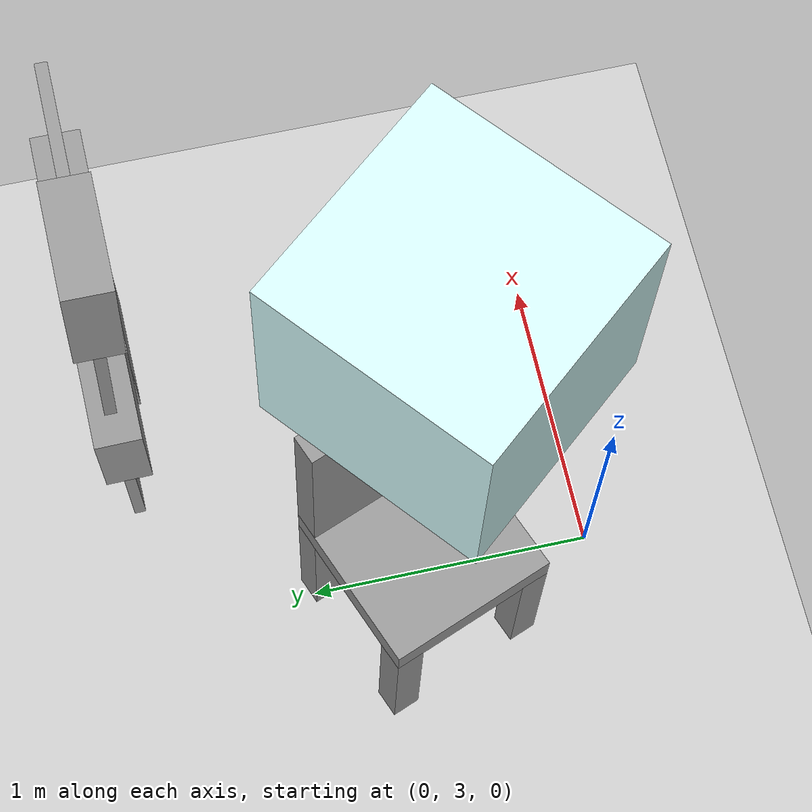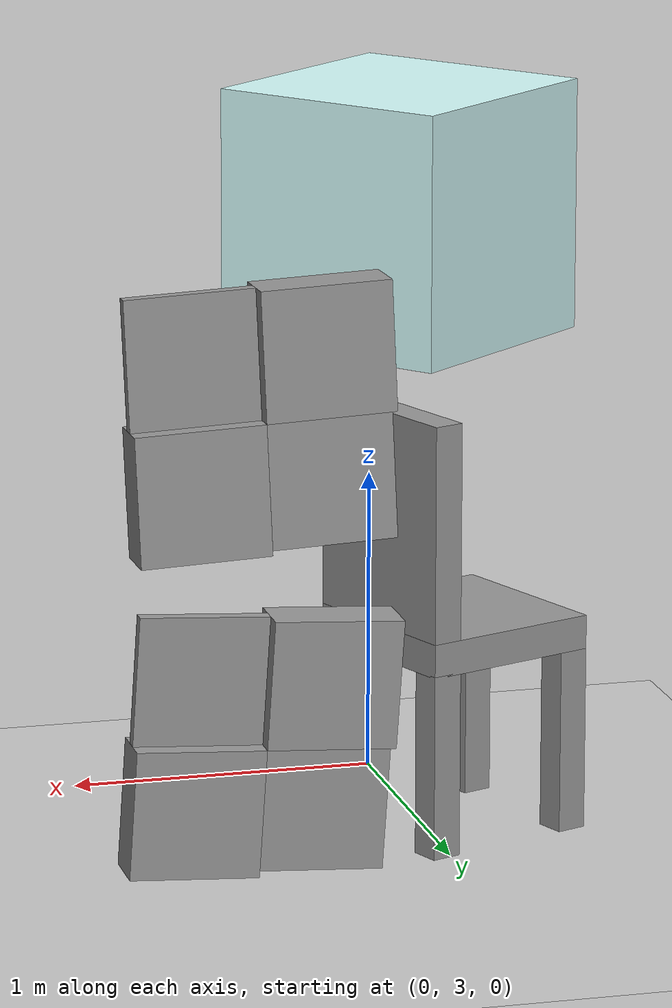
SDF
<sdf version="1.7">
 <world name="default">
  <model name="dyn_box_1">
   <pose>0.054794 3.56493 2 0 -0 0.693286</pose>
   <static>1</static>
   <allow_auto_disable>0</allow_auto_disable>
   <link name="link">
    <collision name="collision">
     <geometry><box><size>0.8 0.8 0.8</size></box></geometry>
     <max_contacts>20</max_contacts>
    </collision>
    <visual name="visual">
     <geometry><box><size>0.8 0.8 0.8</size></box></geometry>
     <material><ambient>0.839216 1 0.996078 1</ambient><diffuse>0.839216 1 0.996078 1</diffuse></material>
    </visual>
   </link>
  </model>
  <model name="ground_plane">
   <static>1</static>
   <link name="link">
    <collision name="collision">
     <geometry><plane><normal>0 0 1</normal><size>100 100</size></plane></geometry>
     <surface>
      <contact><collide_bitmask>65535</collide_bitmask></contact>
      <friction><ode><mu>100</mu><mu2>50</mu2></ode></friction>
     </surface>
    </collision>
    <visual name="visual">
     <cast_shadows>0</cast_shadows>
     <geometry><plane><normal>0 0 1</normal><size>100 100</size></plane></geometry>
     <material>
      <script><uri>file://media/materials/scripts/gazebo.material</uri><name>Gazebo/Grey</name></script>
     </material>
    </visual>
   </link>
  </model>
  <model name="wall_slate_41">
   <static>1</static>
   <link name="link_0">
    <inertial><mass>1</mass></inertial>
    <gravity>0</gravity>
    <visual name="visual">
     <pose>0 0.2 0.2 0 -0 0</pose>
     <geometry><box><size>0.16 0.4 0.4</size></box></geometry>
     <material>
      <lighting>1</lighting>
      <script><uri>file://media/materials/scripts/gazebo.material</uri><name>Gazebo/Grey</name></script>
      <shader type="pixel"><normal_map>__default__</normal_map></shader>
      <ambient>0.3 0.3 0.3 1</ambient>
      <diffuse>0.7 0.7 0.7 1</diffuse>
      <specular>0.01 0.01 0.01 1</specular>
      <emissive>0 0 0 1</emissive>
     </material>
    </visual>
    <visual name="ModelPreview_0::link_0::visual_1">
     <pose>0 0.2 -0.2 0 -0 0</pose>
     <geometry><box><size>0.04 0.4 0.4</size></box></geometry>
     <material>
      <lighting>1</lighting>
      <script><uri>file://media/materials/scripts/gazebo.material</uri><name>Gazebo/Grey</name></script>
      <shader type="pixel"><normal_map>__default__</normal_map></shader>
      <ambient>0.3 0.3 0.3 1</ambient>
      <diffuse>0.7 0.7 0.7 1</diffuse>
      <specular>0.01 0.01 0.01 1</specular>
      <emissive>0 0 0 1</emissive>
     </material>
    </visual>
    <visual name="ModelPreview_0::link_0::visual_2">
     <pose>0 -0.2 0.2 0 -0 0</pose>
     <geometry><box><size>0.04 0.4 0.4</size></box></geometry>
     <material>
      <lighting>1</lighting>
      <script><uri>file://media/materials/scripts/gazebo.material</uri><name>Gazebo/Grey</name></script>
      <shader type="pixel"><normal_map>__default__</normal_map></shader>
      <ambient>0.3 0.3 0.3 1</ambient>
      <diffuse>0.7 0.7 0.7 1</diffuse>
      <specular>0.01 0.01 0.01 1</specular>
      <emissive>0 0 0 1</emissive>
     </material>
    </visual>
    <visual name="ModelPreview_0::link_0::visual_3">
     <pose>0 -0.2 -0.2 0 -0 0</pose>
     <geometry><box><size>0.16 0.4 0.4</size></box></geometry>
     <material>
      <lighting>1</lighting>
      <script><uri>file://media/materials/scripts/gazebo.material</uri><name>Gazebo/Grey</name></script>
      <shader type="pixel"><normal_map>__default__</normal_map></shader>
      <ambient>0.3 0.3 0.3 1</ambient>
      <diffuse>0.7 0.7 0.7 1</diffuse>
      <specular>0.01 0.01 0.01 1</specular>
      <emissive>0 0 0 1</emissive>
     </material>
    </visual>
    <collision name="collision_2">
     <pose>0 -0.2 0.2 0 -0 0</pose>
     <geometry><box><size>0.04 0.4 0.4</size></box></geometry>
     <surface>
      <friction>
       <ode><mu>1</mu><mu2>1</mu2><fdir1>0 0 0</fdir1><slip1>0</slip1><slip2>0</slip2></ode>
       <torsional>
        <coefficient>1</coefficient>
        <patch_radius>0</patch_radius>
        <surface_radius>0</surface_radius>
        <use_patch_radius>1</use_patch_radius>
        <ode><slip>0</slip></ode>
       </torsional>
      </friction>
      <bounce><restitution_coefficient>0</restitution_coefficient><threshold>1e+06</threshold></bounce>
      <contact>
       <collide_without_contact>0</collide_without_contact>
       <collide_without_contact_bitmask>1</collide_without_contact_bitmask>
       <collide_bitmask>1</collide_bitmask>
       <ode>
        <soft_cfm>0</soft_cfm>
        <soft_erp>0.2</soft_erp>
        <kp>1e+13</kp>
        <kd>1</kd>
        <max_vel>0.01</max_vel>
        <min_depth>0</min_depth>
       </ode>
       <bullet>
        <split_impulse>1</split_impulse>
        <split_impulse_penetration_threshold>-0.01</split_impulse_penetration_threshold>
        <soft_cfm>0</soft_cfm>
        <soft_erp>0.2</soft_erp>
        <kp>1e+13</kp>
        <kd>1</kd>
       </bullet>
      </contact>
     </surface>
    </collision>
    <collision name="collision_1">
     <pose>0 0.2 -0.2 0 -0 0</pose>
     <geometry><box><size>0.04 0.4 0.4</size></box></geometry>
     <surface>
      <friction>
       <ode><mu>1</mu><mu2>1</mu2><fdir1>0 0 0</fdir1><slip1>0</slip1><slip2>0</slip2></ode>
       <torsional>
        <coefficient>1</coefficient>
        <patch_radius>0</patch_radius>
        <surface_radius>0</surface_radius>
        <use_patch_radius>1</use_patch_radius>
        <ode><slip>0</slip></ode>
       </torsional>
      </friction>
      <bounce><restitution_coefficient>0</restitution_coefficient><threshold>1e+06</threshold></bounce>
      <contact>
       <collide_without_contact>0</collide_without_contact>
       <collide_without_contact_bitmask>1</collide_without_contact_bitmask>
       <collide_bitmask>1</collide_bitmask>
       <ode>
        <soft_cfm>0</soft_cfm>
        <soft_erp>0.2</soft_erp>
        <kp>1e+13</kp>
        <kd>1</kd>
        <max_vel>0.01</max_vel>
        <min_depth>0</min_depth>
       </ode>
       <bullet>
        <split_impulse>1</split_impulse>
        <split_impulse_penetration_threshold>-0.01</split_impulse_penetration_threshold>
        <soft_cfm>0</soft_cfm>
        <soft_erp>0.2</soft_erp>
        <kp>1e+13</kp>
        <kd>1</kd>
       </bullet>
      </contact>
     </surface>
    </collision>
    <collision name="collision_4">
     <pose>0 0.2 0.2 0 -0 0</pose>
     <geometry><box><size>0.16 0.4 0.4</size></box></geometry>
     <surface>
      <friction>
       <ode><mu>1</mu><mu2>1</mu2><fdir1>0 0 0</fdir1><slip1>0</slip1><slip2>0</slip2></ode>
       <torsional>
        <coefficient>1</coefficient>
        <patch_radius>0</patch_radius>
        <surface_radius>0</surface_radius>
        <use_patch_radius>1</use_patch_radius>
        <ode><slip>0</slip></ode>
       </torsional>
      </friction>
      <bounce><restitution_coefficient>0</restitution_coefficient><threshold>1e+06</threshold></bounce>
      <contact>
       <collide_without_contact>0</collide_without_contact>
       <collide_without_contact_bitmask>1</collide_without_contact_bitmask>
       <collide_bitmask>1</collide_bitmask>
       <ode>
        <soft_cfm>0</soft_cfm>
        <soft_erp>0.2</soft_erp>
        <kp>1e+13</kp>
        <kd>1</kd>
        <max_vel>0.01</max_vel>
        <min_depth>0</min_depth>
       </ode>
       <bullet>
        <split_impulse>1</split_impulse>
        <split_impulse_penetration_threshold>-0.01</split_impulse_penetration_threshold>
        <soft_cfm>0</soft_cfm>
        <soft_erp>0.2</soft_erp>
        <kp>1e+13</kp>
        <kd>1</kd>
       </bullet>
      </contact>
     </surface>
    </collision>
    <collision name="collision_3">
     <pose>0 -0.2 -0.2 0 -0 0</pose>
     <geometry><box><size>0.16 0.4 0.4</size></box></geometry>
     <surface>
      <friction>
       <ode><mu>1</mu><mu2>1</mu2><fdir1>0 0 0</fdir1><slip1>0</slip1><slip2>0</slip2></ode>
       <torsional>
        <coefficient>1</coefficient>
        <patch_radius>0</patch_radius>
        <surface_radius>0</surface_radius>
        <use_patch_radius>1</use_patch_radius>
        <ode><slip>0</slip></ode>
       </torsional>
      </friction>
      <bounce><restitution_coefficient>0</restitution_coefficient><threshold>1e+06</threshold></bounce>
      <contact>
       <collide_without_contact>0</collide_without_contact>
       <collide_without_contact_bitmask>1</collide_without_contact_bitmask>
       <collide_bitmask>1</collide_bitmask>
       <ode>
        <soft_cfm>0</soft_cfm>
        <soft_erp>0.2</soft_erp>
        <kp>1e+13</kp>
        <kd>1</kd>
        <max_vel>0.01</max_vel>
        <min_depth>0</min_depth>
       </ode>
       <bullet>
        <split_impulse>1</split_impulse>
        <split_impulse_penetration_threshold>-0.01</split_impulse_penetration_threshold>
        <soft_cfm>0</soft_cfm>
        <soft_erp>0.2</soft_erp>
        <kp>1e+13</kp>
        <kd>1</kd>
       </bullet>
      </contact>
     </surface>
    </collision>
   </link>
   <pose>0.753514 4.56618 0.6 -0.06 0.02 1.5757</pose>
  </model>
  <model name="wall_slate_52">
   <static>1</static>
   <link name="link_0">
    <inertial><mass>1</mass></inertial>
    <gravity>0</gravity>
    <visual name="visual">
     <pose>0 0.2 0.2 0 -0 0</pose>
     <geometry><box><size>0.16 0.4 0.4</size></box></geometry>
     <material>
      <lighting>1</lighting>
      <script><uri>file://media/materials/scripts/gazebo.material</uri><name>Gazebo/Grey</name></script>
      <shader type="pixel"><normal_map>__default__</normal_map></shader>
      <ambient>0.3 0.3 0.3 1</ambient>
      <diffuse>0.7 0.7 0.7 1</diffuse>
      <specular>0.01 0.01 0.01 1</specular>
      <emissive>0 0 0 1</emissive>
     </material>
    </visual>
    <visual name="ModelPreview_0::link_0::visual_1">
     <pose>0 0.2 -0.2 0 -0 0</pose>
     <geometry><box><size>0.04 0.4 0.4</size></box></geometry>
     <material>
      <lighting>1</lighting>
      <script><uri>file://media/materials/scripts/gazebo.material</uri><name>Gazebo/Grey</name></script>
      <shader type="pixel"><normal_map>__default__</normal_map></shader>
      <ambient>0.3 0.3 0.3 1</ambient>
      <diffuse>0.7 0.7 0.7 1</diffuse>
      <specular>0.01 0.01 0.01 1</specular>
      <emissive>0 0 0 1</emissive>
     </material>
    </visual>
    <visual name="ModelPreview_0::link_0::visual_2">
     <pose>0 -0.2 0.2 0 -0 0</pose>
     <geometry><box><size>0.04 0.4 0.4</size></box></geometry>
     <material>
      <lighting>1</lighting>
      <script><uri>file://media/materials/scripts/gazebo.material</uri><name>Gazebo/Grey</name></script>
      <shader type="pixel"><normal_map>__default__</normal_map></shader>
      <ambient>0.3 0.3 0.3 1</ambient>
      <diffuse>0.7 0.7 0.7 1</diffuse>
      <specular>0.01 0.01 0.01 1</specular>
      <emissive>0 0 0 1</emissive>
     </material>
    </visual>
    <visual name="ModelPreview_0::link_0::visual_3">
     <pose>0 -0.2 -0.2 0 -0 0</pose>
     <geometry><box><size>0.16 0.4 0.4</size></box></geometry>
     <material>
      <lighting>1</lighting>
      <script><uri>file://media/materials/scripts/gazebo.material</uri><name>Gazebo/Grey</name></script>
      <shader type="pixel"><normal_map>__default__</normal_map></shader>
      <ambient>0.3 0.3 0.3 1</ambient>
      <diffuse>0.7 0.7 0.7 1</diffuse>
      <specular>0.01 0.01 0.01 1</specular>
      <emissive>0 0 0 1</emissive>
     </material>
    </visual>
    <collision name="collision_2">
     <pose>0 -0.2 0.2 0 -0 0</pose>
     <geometry><box><size>0.04 0.4 0.4</size></box></geometry>
     <surface>
      <friction>
       <ode><mu>1</mu><mu2>1</mu2><fdir1>0 0 0</fdir1><slip1>0</slip1><slip2>0</slip2></ode>
       <torsional>
        <coefficient>1</coefficient>
        <patch_radius>0</patch_radius>
        <surface_radius>0</surface_radius>
        <use_patch_radius>1</use_patch_radius>
        <ode><slip>0</slip></ode>
       </torsional>
      </friction>
      <bounce><restitution_coefficient>0</restitution_coefficient><threshold>1e+06</threshold></bounce>
      <contact>
       <collide_without_contact>0</collide_without_contact>
       <collide_without_contact_bitmask>1</collide_without_contact_bitmask>
       <collide_bitmask>1</collide_bitmask>
       <ode>
        <soft_cfm>0</soft_cfm>
        <soft_erp>0.2</soft_erp>
        <kp>1e+13</kp>
        <kd>1</kd>
        <max_vel>0.01</max_vel>
        <min_depth>0</min_depth>
       </ode>
       <bullet>
        <split_impulse>1</split_impulse>
        <split_impulse_penetration_threshold>-0.01</split_impulse_penetration_threshold>
        <soft_cfm>0</soft_cfm>
        <soft_erp>0.2</soft_erp>
        <kp>1e+13</kp>
        <kd>1</kd>
       </bullet>
      </contact>
     </surface>
    </collision>
    <collision name="collision_1">
     <pose>0 0.2 -0.2 0 -0 0</pose>
     <geometry><box><size>0.04 0.4 0.4</size></box></geometry>
     <surface>
      <friction>
       <ode><mu>1</mu><mu2>1</mu2><fdir1>0 0 0</fdir1><slip1>0</slip1><slip2>0</slip2></ode>
       <torsional>
        <coefficient>1</coefficient>
        <patch_radius>0</patch_radius>
        <surface_radius>0</surface_radius>
        <use_patch_radius>1</use_patch_radius>
        <ode><slip>0</slip></ode>
       </torsional>
      </friction>
      <bounce><restitution_coefficient>0</restitution_coefficient><threshold>1e+06</threshold></bounce>
      <contact>
       <collide_without_contact>0</collide_without_contact>
       <collide_without_contact_bitmask>1</collide_without_contact_bitmask>
       <collide_bitmask>1</collide_bitmask>
       <ode>
        <soft_cfm>0</soft_cfm>
        <soft_erp>0.2</soft_erp>
        <kp>1e+13</kp>
        <kd>1</kd>
        <max_vel>0.01</max_vel>
        <min_depth>0</min_depth>
       </ode>
       <bullet>
        <split_impulse>1</split_impulse>
        <split_impulse_penetration_threshold>-0.01</split_impulse_penetration_threshold>
        <soft_cfm>0</soft_cfm>
        <soft_erp>0.2</soft_erp>
        <kp>1e+13</kp>
        <kd>1</kd>
       </bullet>
      </contact>
     </surface>
    </collision>
    <collision name="collision_4">
     <pose>0 0.2 0.2 0 -0 0</pose>
     <geometry><box><size>0.16 0.4 0.4</size></box></geometry>
     <surface>
      <friction>
       <ode><mu>1</mu><mu2>1</mu2><fdir1>0 0 0</fdir1><slip1>0</slip1><slip2>0</slip2></ode>
       <torsional>
        <coefficient>1</coefficient>
        <patch_radius>0</patch_radius>
        <surface_radius>0</surface_radius>
        <use_patch_radius>1</use_patch_radius>
        <ode><slip>0</slip></ode>
       </torsional>
      </friction>
      <bounce><restitution_coefficient>0</restitution_coefficient><threshold>1e+06</threshold></bounce>
      <contact>
       <collide_without_contact>0</collide_without_contact>
       <collide_without_contact_bitmask>1</collide_without_contact_bitmask>
       <collide_bitmask>1</collide_bitmask>
       <ode>
        <soft_cfm>0</soft_cfm>
        <soft_erp>0.2</soft_erp>
        <kp>1e+13</kp>
        <kd>1</kd>
        <max_vel>0.01</max_vel>
        <min_depth>0</min_depth>
       </ode>
       <bullet>
        <split_impulse>1</split_impulse>
        <split_impulse_penetration_threshold>-0.01</split_impulse_penetration_threshold>
        <soft_cfm>0</soft_cfm>
        <soft_erp>0.2</soft_erp>
        <kp>1e+13</kp>
        <kd>1</kd>
       </bullet>
      </contact>
     </surface>
    </collision>
    <collision name="collision_3">
     <pose>0 -0.2 -0.2 0 -0 0</pose>
     <geometry><box><size>0.16 0.4 0.4</size></box></geometry>
     <surface>
      <friction>
       <ode><mu>1</mu><mu2>1</mu2><fdir1>0 0 0</fdir1><slip1>0</slip1><slip2>0</slip2></ode>
       <torsional>
        <coefficient>1</coefficient>
        <patch_radius>0</patch_radius>
        <surface_radius>0</surface_radius>
        <use_patch_radius>1</use_patch_radius>
        <ode><slip>0</slip></ode>
       </torsional>
      </friction>
      <bounce><restitution_coefficient>0</restitution_coefficient><threshold>1e+06</threshold></bounce>
      <contact>
       <collide_without_contact>0</collide_without_contact>
       <collide_without_contact_bitmask>1</collide_without_contact_bitmask>
       <collide_bitmask>1</collide_bitmask>
       <ode>
        <soft_cfm>0</soft_cfm>
        <soft_erp>0.2</soft_erp>
        <kp>1e+13</kp>
        <kd>1</kd>
        <max_vel>0.01</max_vel>
        <min_depth>0</min_depth>
       </ode>
       <bullet>
        <split_impulse>1</split_impulse>
        <split_impulse_penetration_threshold>-0.01</split_impulse_penetration_threshold>
        <soft_cfm>0</soft_cfm>
        <soft_erp>0.2</soft_erp>
        <kp>1e+13</kp>
        <kd>1</kd>
       </bullet>
      </contact>
     </surface>
    </collision>
   </link>
   <pose>0.753514 4.56618 1.6 0.04 -0.02 1.5757</pose>
  </model>
  <model name="chair_0">
   <link name="link_0_clone">
    <inertial>
     <mass>1</mass>
     <inertia><ixx>1</ixx><ixy>0</ixy><ixz>0</ixz><iyy>1</iyy><iyz>0</iyz><izz>1</izz></inertia>
    </inertial>
    <pose>-0.041667 -0 0.165833 0 -0 0</pose>
    <gravity>0</gravity>
    <visual name="visual">
     <geometry><box><size>0.6 0.6 0.11</size></box></geometry>
     <material>
      <lighting>1</lighting>
      <script><uri>file://media/materials/scripts/gazebo.material</uri><name>Gazebo/Grey</name></script>
      <shader type="pixel"><normal_map>__default__</normal_map></shader>
      <ambient>0.3 0.3 0.3 1</ambient>
      <diffuse>0.7 0.7 0.7 1</diffuse>
      <specular>0.01 0.01 0.01 1</specular>
      <emissive>0 0 0 1</emissive>
     </material>
    </visual>
    <collision name="collision">
     <geometry><box><size>0.6 0.6 0.1</size></box></geometry>
     <surface>
      <friction>
       <ode><mu>1</mu><mu2>1</mu2><fdir1>0 0 0</fdir1><slip1>0</slip1><slip2>0</slip2></ode>
       <torsional>
        <coefficient>1</coefficient>
        <patch_radius>0</patch_radius>
        <surface_radius>0</surface_radius>
        <use_patch_radius>1</use_patch_radius>
        <ode><slip>0</slip></ode>
       </torsional>
      </friction>
      <bounce><restitution_coefficient>0</restitution_coefficient><threshold>1e+06</threshold></bounce>
      <contact>
       <collide_without_contact>0</collide_without_contact>
       <collide_without_contact_bitmask>1</collide_without_contact_bitmask>
       <collide_bitmask>1</collide_bitmask>
       <ode>
        <soft_cfm>0</soft_cfm>
        <soft_erp>0.2</soft_erp>
        <kp>1e+13</kp>
        <kd>1</kd>
        <max_vel>0.01</max_vel>
        <min_depth>0</min_depth>
       </ode>
       <bullet>
        <split_impulse>1</split_impulse>
        <split_impulse_penetration_threshold>-0.01</split_impulse_penetration_threshold>
        <soft_cfm>0</soft_cfm>
        <soft_erp>0.2</soft_erp>
        <kp>1e+13</kp>
        <kd>1</kd>
       </bullet>
      </contact>
     </surface>
    </collision>
   </link>
   <link name="link_1_clone">
    <inertial>
     <mass>1</mass>
     <inertia>
      <ixx>0.166667</ixx>
      <ixy>0</ixy>
      <ixz>0</ixz>
      <iyy>0.166667</iyy>
      <iyz>0</iyz>
      <izz>0.166667</izz>
     </inertia>
    </inertial>
    <pose>-0.291667 0.25 -0.184167 0 -0 0</pose>
    <visual name="visual">
     <geometry><box><size>0.1 0.1 0.6</size></box></geometry>
     <material>
      <lighting>1</lighting>
      <script><uri>file://media/materials/scripts/gazebo.material</uri><name>Gazebo/Grey</name></script>
      <shader type="pixel"><normal_map>__default__</normal_map></shader>
      <ambient>0.3 0.3 0.3 1</ambient>
      <diffuse>0.7 0.7 0.7 1</diffuse>
      <specular>0.01 0.01 0.01 1</specular>
      <emissive>0 0 0 1</emissive>
     </material>
    </visual>
    <collision name="collision">
     <geometry><box><size>0.1 0.1 0.6</size></box></geometry>
     <surface>
      <friction>
       <ode><mu>1</mu><mu2>1</mu2><fdir1>0 0 0</fdir1><slip1>0</slip1><slip2>0</slip2></ode>
       <torsional>
        <coefficient>1</coefficient>
        <patch_radius>0</patch_radius>
        <surface_radius>0</surface_radius>
        <use_patch_radius>1</use_patch_radius>
        <ode><slip>0</slip></ode>
       </torsional>
      </friction>
      <bounce><restitution_coefficient>0</restitution_coefficient><threshold>1e+06</threshold></bounce>
      <contact>
       <collide_without_contact>0</collide_without_contact>
       <collide_without_contact_bitmask>1</collide_without_contact_bitmask>
       <collide_bitmask>1</collide_bitmask>
       <ode>
        <soft_cfm>0</soft_cfm>
        <soft_erp>0.2</soft_erp>
        <kp>1e+13</kp>
        <kd>1</kd>
        <max_vel>0.01</max_vel>
        <min_depth>0</min_depth>
       </ode>
       <bullet>
        <split_impulse>1</split_impulse>
        <split_impulse_penetration_threshold>-0.01</split_impulse_penetration_threshold>
        <soft_cfm>0</soft_cfm>
        <soft_erp>0.2</soft_erp>
        <kp>1e+13</kp>
        <kd>1</kd>
       </bullet>
      </contact>
     </surface>
    </collision>
   </link>
   <link name="link_1_clone_0">
    <inertial>
     <mass>1</mass>
     <inertia>
      <ixx>0.166667</ixx>
      <ixy>0</ixy>
      <ixz>0</ixz>
      <iyy>0.166667</iyy>
      <iyz>0</iyz>
      <izz>0.166667</izz>
     </inertia>
    </inertial>
    <pose>0.208333 0.25 -0.184167 0 -0 0</pose>
    <visual name="visual">
     <geometry><box><size>0.1 0.1 0.6</size></box></geometry>
     <material>
      <lighting>1</lighting>
      <script><uri>file://media/materials/scripts/gazebo.material</uri><name>Gazebo/Grey</name></script>
      <shader type="pixel"><normal_map>__default__</normal_map></shader>
      <ambient>0.3 0.3 0.3 1</ambient>
      <diffuse>0.7 0.7 0.7 1</diffuse>
      <specular>0.01 0.01 0.01 1</specular>
      <emissive>0 0 0 1</emissive>
     </material>
    </visual>
    <collision name="collision">
     <geometry><box><size>0.1 0.1 0.6</size></box></geometry>
     <surface>
      <friction>
       <ode><mu>1</mu><mu2>1</mu2><fdir1>0 0 0</fdir1><slip1>0</slip1><slip2>0</slip2></ode>
       <torsional>
        <coefficient>1</coefficient>
        <patch_radius>0</patch_radius>
        <surface_radius>0</surface_radius>
        <use_patch_radius>1</use_patch_radius>
        <ode><slip>0</slip></ode>
       </torsional>
      </friction>
      <bounce><restitution_coefficient>0</restitution_coefficient><threshold>1e+06</threshold></bounce>
      <contact>
       <collide_without_contact>0</collide_without_contact>
       <collide_without_contact_bitmask>1</collide_without_contact_bitmask>
       <collide_bitmask>1</collide_bitmask>
       <ode>
        <soft_cfm>0</soft_cfm>
        <soft_erp>0.2</soft_erp>
        <kp>1e+13</kp>
        <kd>1</kd>
        <max_vel>0.01</max_vel>
        <min_depth>0</min_depth>
       </ode>
       <bullet>
        <split_impulse>1</split_impulse>
        <split_impulse_penetration_threshold>-0.01</split_impulse_penetration_threshold>
        <soft_cfm>0</soft_cfm>
        <soft_erp>0.2</soft_erp>
        <kp>1e+13</kp>
        <kd>1</kd>
       </bullet>
      </contact>
     </surface>
    </collision>
   </link>
   <link name="link_1_clone_1">
    <inertial>
     <mass>1</mass>
     <inertia>
      <ixx>0.166667</ixx>
      <ixy>0</ixy>
      <ixz>0</ixz>
      <iyy>0.166667</iyy>
      <iyz>0</iyz>
      <izz>0.166667</izz>
     </inertia>
    </inertial>
    <pose>0.208333 -0.25 -0.184167 0 -0 0</pose>
    <visual name="visual">
     <geometry><box><size>0.1 0.1 0.6</size></box></geometry>
     <material>
      <lighting>1</lighting>
      <script><uri>file://media/materials/scripts/gazebo.material</uri><name>Gazebo/Grey</name></script>
      <shader type="pixel"><normal_map>__default__</normal_map></shader>
      <ambient>0.3 0.3 0.3 1</ambient>
      <diffuse>0.7 0.7 0.7 1</diffuse>
      <specular>0.01 0.01 0.01 1</specular>
      <emissive>0 0 0 1</emissive>
     </material>
    </visual>
    <collision name="collision">
     <geometry><box><size>0.1 0.1 0.6</size></box></geometry>
     <surface>
      <friction>
       <ode><mu>1</mu><mu2>1</mu2><fdir1>0 0 0</fdir1><slip1>0</slip1><slip2>0</slip2></ode>
       <torsional>
        <coefficient>1</coefficient>
        <patch_radius>0</patch_radius>
        <surface_radius>0</surface_radius>
        <use_patch_radius>1</use_patch_radius>
        <ode><slip>0</slip></ode>
       </torsional>
      </friction>
      <bounce><restitution_coefficient>0</restitution_coefficient><threshold>1e+06</threshold></bounce>
      <contact>
       <collide_without_contact>0</collide_without_contact>
       <collide_without_contact_bitmask>1</collide_without_contact_bitmask>
       <collide_bitmask>1</collide_bitmask>
       <ode>
        <soft_cfm>0</soft_cfm>
        <soft_erp>0.2</soft_erp>
        <kp>1e+13</kp>
        <kd>1</kd>
        <max_vel>0.01</max_vel>
        <min_depth>0</min_depth>
       </ode>
       <bullet>
        <split_impulse>1</split_impulse>
        <split_impulse_penetration_threshold>-0.01</split_impulse_penetration_threshold>
        <soft_cfm>0</soft_cfm>
        <soft_erp>0.2</soft_erp>
        <kp>1e+13</kp>
        <kd>1</kd>
       </bullet>
      </contact>
     </surface>
    </collision>
   </link>
   <link name="link_1_clone_clone">
    <inertial>
     <mass>1</mass>
     <inertia>
      <ixx>0.166667</ixx>
      <ixy>0</ixy>
      <ixz>0</ixz>
      <iyy>0.166667</iyy>
      <iyz>0</iyz>
      <izz>0.166667</izz>
     </inertia>
    </inertial>
    <pose>-0.291667 -0.25 -0.184167 0 -0 0</pose>
    <visual name="visual">
     <geometry><box><size>0.1 0.1 0.6</size></box></geometry>
     <material>
      <lighting>1</lighting>
      <script><uri>file://media/materials/scripts/gazebo.material</uri><name>Gazebo/Grey</name></script>
      <shader type="pixel"><normal_map>__default__</normal_map></shader>
      <ambient>0.3 0.3 0.3 1</ambient>
      <diffuse>0.7 0.7 0.7 1</diffuse>
      <specular>0.01 0.01 0.01 1</specular>
      <emissive>0 0 0 1</emissive>
     </material>
    </visual>
    <collision name="collision">
     <geometry><box><size>0.1 0.1 0.6</size></box></geometry>
     <surface>
      <friction>
       <ode><mu>1</mu><mu2>1</mu2><fdir1>0 0 0</fdir1><slip1>0</slip1><slip2>0</slip2></ode>
       <torsional>
        <coefficient>1</coefficient>
        <patch_radius>0</patch_radius>
        <surface_radius>0</surface_radius>
        <use_patch_radius>1</use_patch_radius>
        <ode><slip>0</slip></ode>
       </torsional>
      </friction>
      <bounce><restitution_coefficient>0</restitution_coefficient><threshold>1e+06</threshold></bounce>
      <contact>
       <collide_without_contact>0</collide_without_contact>
       <collide_without_contact_bitmask>1</collide_without_contact_bitmask>
       <collide_bitmask>1</collide_bitmask>
       <ode>
        <soft_cfm>0</soft_cfm>
        <soft_erp>0.2</soft_erp>
        <kp>1e+13</kp>
        <kd>1</kd>
        <max_vel>0.01</max_vel>
        <min_depth>0</min_depth>
       </ode>
       <bullet>
        <split_impulse>1</split_impulse>
        <split_impulse_penetration_threshold>-0.01</split_impulse_penetration_threshold>
        <soft_cfm>0</soft_cfm>
        <soft_erp>0.2</soft_erp>
        <kp>1e+13</kp>
        <kd>1</kd>
       </bullet>
      </contact>
     </surface>
    </collision>
   </link>
   <link name="link_2_clone">
    <inertial>
     <mass>1</mass>
     <inertia>
      <ixx>0.166667</ixx>
      <ixy>0</ixy>
      <ixz>0</ixz>
      <iyy>0.166667</iyy>
      <iyz>0</iyz>
      <izz>0.166667</izz>
     </inertia>
    </inertial>
    <pose>0.208333 -0 0.570833 0 -0 0</pose>
    <visual name="visual">
     <geometry><box><size>0.1 0.6 0.7</size></box></geometry>
     <material>
      <lighting>1</lighting>
      <script><uri>file://media/materials/scripts/gazebo.material</uri><name>Gazebo/Grey</name></script>
      <shader type="pixel"><normal_map>__default__</normal_map></shader>
      <ambient>0.3 0.3 0.3 1</ambient>
      <diffuse>0.7 0.7 0.7 1</diffuse>
      <specular>0.01 0.01 0.01 1</specular>
      <emissive>0 0 0 1</emissive>
     </material>
    </visual>
    <collision name="collision">
     <geometry><box><size>0.1 0.6 0.7</size></box></geometry>
     <surface>
      <friction>
       <ode><mu>1</mu><mu2>1</mu2><fdir1>0 0 0</fdir1><slip1>0</slip1><slip2>0</slip2></ode>
       <torsional>
        <coefficient>1</coefficient>
        <patch_radius>0</patch_radius>
        <surface_radius>0</surface_radius>
        <use_patch_radius>1</use_patch_radius>
        <ode><slip>0</slip></ode>
       </torsional>
      </friction>
      <bounce><restitution_coefficient>0</restitution_coefficient><threshold>1e+06</threshold></bounce>
      <contact>
       <collide_without_contact>0</collide_without_contact>
       <collide_without_contact_bitmask>1</collide_without_contact_bitmask>
       <collide_bitmask>1</collide_bitmask>
       <ode>
        <soft_cfm>0</soft_cfm>
        <soft_erp>0.2</soft_erp>
        <kp>1e+13</kp>
        <kd>1</kd>
        <max_vel>0.01</max_vel>
        <min_depth>0</min_depth>
       </ode>
       <bullet>
        <split_impulse>1</split_impulse>
        <split_impulse_penetration_threshold>-0.01</split_impulse_penetration_threshold>
        <soft_cfm>0</soft_cfm>
        <soft_erp>0.2</soft_erp>
        <kp>1e+13</kp>
        <kd>1</kd>
       </bullet>
      </contact>
     </surface>
    </collision>
   </link>
   <joint name="link_0_clone_JOINT_0" type="fixed">
    <parent>link_0_clone</parent>
    <child>link_1_clone_clone</child>
    <physics><ode><limit><cfm>0</cfm><erp>0.2</erp></limit></ode></physics>
   </joint>
   <joint name="link_0_clone_JOINT_1" type="fixed">
    <parent>link_0_clone</parent>
    <child>link_1_clone</child>
    <physics><ode><limit><cfm>0</cfm><erp>0.2</erp></limit></ode></physics>
   </joint>
   <joint name="link_0_clone_JOINT_2" type="fixed">
    <parent>link_0_clone</parent>
    <child>link_1_clone_1</child>
    <physics><ode><limit><cfm>0</cfm><erp>0.2</erp></limit></ode></physics>
   </joint>
   <joint name="link_0_clone_JOINT_3" type="fixed">
    <parent>link_0_clone</parent>
    <child>link_2_clone</child>
    <physics><ode><limit><cfm>0</cfm><erp>0.2</erp></limit></ode></physics>
   </joint>
   <joint name="link_0_clone_JOINT_4" type="fixed">
    <parent>link_0_clone</parent>
    <child>link_1_clone_0</child>
    <physics><ode><limit><cfm>0</cfm><erp>0.2</erp></limit></ode></physics>
   </joint>
   <static>0</static>
   <pose>-0.07 3.66444 0.484167 0 -0 0.368266</pose>
  </model>
 </world>
</sdf>
